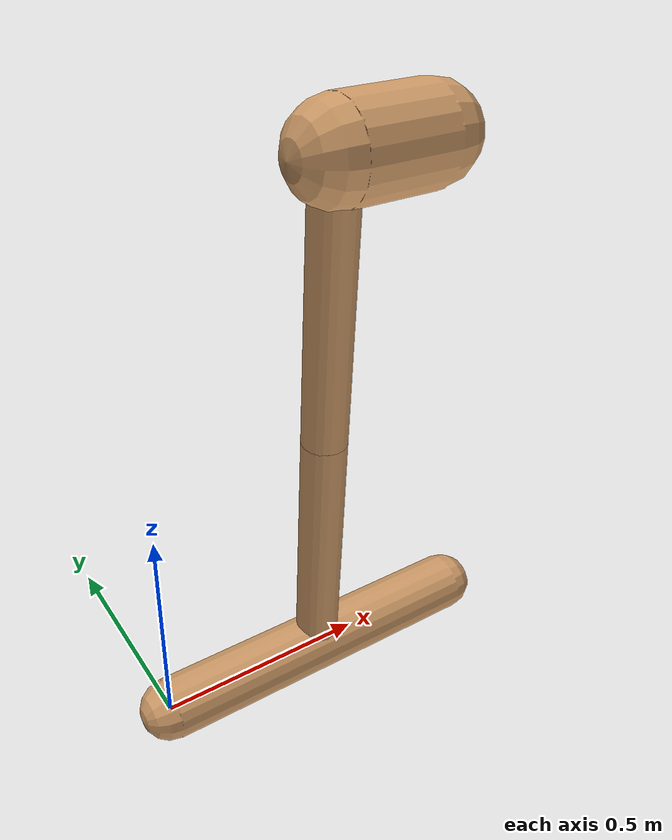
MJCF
<mujoco model="walker2d">
  <compiler angle="degree" coordinate="local" inertiafromgeom="true"/>
  <default>
    <joint armature="0.01" damping="5" stiffness="10" limited="true"/>
    <geom conaffinity="1" condim="3" contype="1" margin="0.001" friction="0.8 .1 .1" rgba="0.8 0.6 .4 1" solimp=".8 .8 .01" solref=".02 1"/>
  </default>
  <option integrator="RK4" iterations="50" solver="PGS" timestep="0.001"/>
  <worldbody>
    <!-- CHANGES: see hopper.xml -->
    <body name="base">
      <joint armature="0" axis="1 0 0" damping="0" limited="false" name="ignorex" pos="1.25 0 2.4" stiffness="0" type="slide"/>
      <joint armature="0" axis="0 0 1" damping="0" limited="false" name="ignorez" pos="1.25 0 2.4" stiffness="0" type="slide"/>
      <joint armature="0" axis="0 1 0" damping="0" limited="false" name="ignorey" pos="1.25 0 2.4" stiffness="0" type="hinge"/>
      <geom fromto="0 0 0 0.8 0 0" name="base_geom" size="0.07" type="capsule" density="1000"/>
      <inertial mass="40"/>
      <body name="leg">
        <joint axis="0 1 0" name="base_joint" pos="0.4 0.0 0.0" range="-90 90" type="hinge"/>
        <geom fromto="0.4 0 0.0 0.4 0 0.6" name="thigh_geom" size="0.05" type="capsule" density="1000"/>
        <inertial mass="10"/>
        <body name="neck">
          <joint axis="0 1 0" name="leg_joint" pos="0.4 0 0.6" range="-15 160" type="hinge"/>
          <geom fromto="0.4 0 0.6 0.4 0.0 1.2" name="leg_geom" size="0.05" type="capsule" density="1000"/>
          <inertial mass="10"/>
          <body name="head">
            <geom fromto="0.4 0 1.2 0.6 0 1.2" name="head_geom" size="0.1" type="capsule" density="2000"/>
          <inertial mass="50"/>
          </body>
        </body>
      </body>
    </body>

    <!-- copied and then replace thigh->thigh_left, leg->leg_left, foot->foot_right -->
  </worldbody>
</mujoco>
